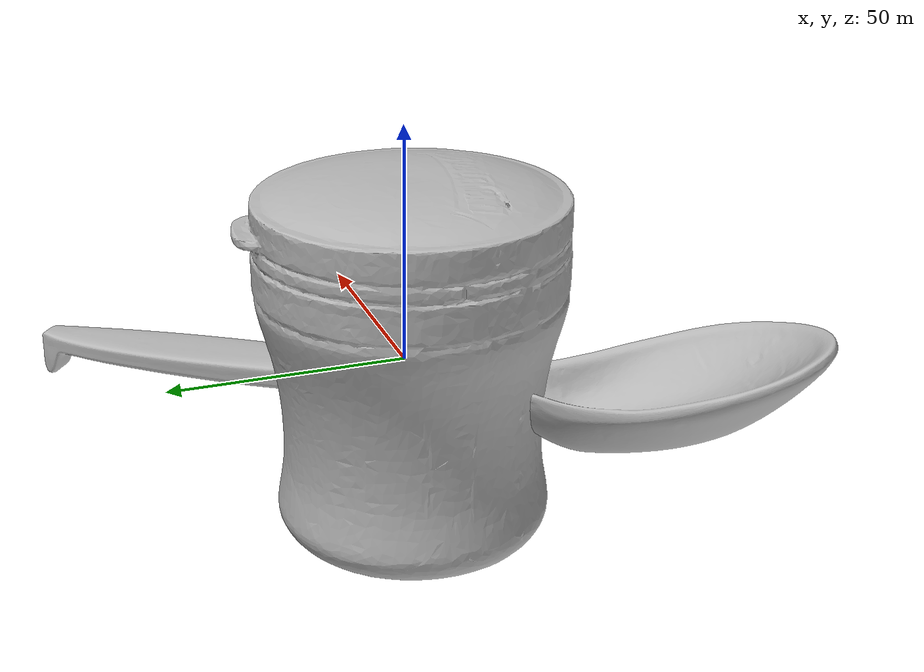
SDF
<sdf version="1.4">
 <world name="default">
  <light name="light1" type="point">
   <pose>0 0 1 0 0 0</pose>
   <diffuse>3 3 3 1</diffuse>
   <specular>3 3 3 1</specular>
  </light>
  <light name="light2" type="point">
   <pose>0 0.5 2 0 0 0</pose>
   <diffuse>1 1 1 1</diffuse>
   <specular>1 1 1 1</specular>
  </light>
  <light name="light3" type="point">
   <pose>0 0.5 2 0 0 0</pose>
   <diffuse>3 3 3 1</diffuse>
   <specular>3 3 3 1</specular>
  </light>
  <scene><ambient>0.7 0.7 0.7</ambient></scene>
  <model name="bottle1">
   <link name="link_bottle1">
    <collision name="default">
     <geometry>
      <mesh><uri>model://green_arrow/collision_meshes/collision.obj</uri><scale>1.0 1.0 1.0</scale></mesh>
     </geometry>
     <surface>
      <friction><ode><mu>0.5</mu><mu2>0.5</mu2></ode></friction>
      <contact><ode><max_vel>0</max_vel><min_depth>0.0001</min_depth><kp>1e8</kp></ode></contact>
     </surface>
    </collision>
    <visual name="default">
     <geometry>
      <mesh><uri>model://green_arrow/visual_meshes/visual.dae</uri><scale>1.0 1.0 1.0</scale></mesh>
     </geometry>
    </visual>
    <inertial>
     <mass>0.31872013211250305</mass>
     <pose>0.0005358478520065546 -0.0008270691032521427 0.002210969803854823 -0.06332250060756175 0.012985582117300467 0.6741007804522225</pose>
     <inertia>
      <ixx>0.00023120124</ixx>
      <iyy>0.000230851</iyy>
      <izz>0.0001492862</izz>
      <ixy>0</ixy>
      <ixz>0</ixz>
      <iyz>0</iyz>
     </inertia>
    </inertial>
   </link>
   <pose>0.07375995814800262 -0.36841335892677307 0.03903084248304367 0.038517992277975005 0.024628438937317372 -0.8557784127164831</pose>
  </model>
  <model name="bottle2">
   <link name="link_bottle2">
    <collision name="default">
     <geometry>
      <mesh><uri>model://pigeon/collision_meshes/collision.obj</uri><scale>1.0 1.0 1.0</scale></mesh>
     </geometry>
     <surface>
      <friction><ode><mu>0.5</mu><mu2>0.5</mu2></ode></friction>
      <contact><ode><max_vel>0</max_vel><min_depth>0.0001</min_depth><kp>1e8</kp></ode></contact>
     </surface>
    </collision>
    <visual name="default">
     <geometry><mesh><uri>model://pigeon/visual_meshes/visual.dae</uri><scale>1.0 1.0 1.0</scale></mesh></geometry>
    </visual>
    <inertial>
     <mass>0.5279804468154907</mass>
     <pose>-9.675472392700613e-05 -0.0001927677367348224 -0.01593620702624321 -0.011704407495178063 -0.0012978199512556723 -0.04198835484465517</pose>
     <inertia>
      <ixx>0.0013198232</ixx>
      <iyy>0.0014089285</iyy>
      <izz>0.000271492</izz>
      <ixy>0</ixy>
      <ixz>0</ixz>
      <iyz>0</iyz>
     </inertia>
    </inertial>
   </link>
   <pose>-0.06105979159474373 -0.108894482254982 0.09864477813243866 2.4438423736262294e-05 2.94289050072857e-06 -0.4093182813711039</pose>
  </model>
  <model name="silverware1">
   <link name="link_silverware1">
    <collision name="default">
     <geometry>
      <mesh><uri>model://doraemon_spoon/collision_meshes/collision.obj</uri><scale>1.0 1.0 1.0</scale></mesh>
     </geometry>
     <surface>
      <friction><ode><mu>0.5</mu><mu2>0.5</mu2></ode></friction>
      <contact><ode><max_vel>0</max_vel><min_depth>0.0001</min_depth><kp>1e8</kp></ode></contact>
     </surface>
    </collision>
    <visual name="default">
     <geometry>
      <mesh><uri>model://doraemon_spoon/visual_meshes/visual.dae</uri><scale>1.0 1.0 1.0</scale></mesh>
     </geometry>
    </visual>
    <inertial>
     <mass>0.014849366620182991</mass>
     <pose>-0.022165074944496155 -0.0006374582299031317 -0.0033325457479804754 -0.009146985479672626 0.07380416127774835 -0.014123827206003371</pose>
     <inertia>
      <ixx>1.1631438e-06</ixx>
      <iyy>3.3035012e-05</iyy>
      <izz>3.359665e-05</izz>
      <ixy>0</ixy>
      <ixz>0</ixz>
      <iyz>0</iyz>
     </inertia>
    </inertial>
   </link>
   <pose>0.0821722075343132 0.06806901842355728 0.014969302341341972 0.0022798215301295904 -0.004406079464836549 0.9496364848783169</pose>
  </model>
  <model name="stationery1">
   <link name="link_stationery1">
    <collision name="default">
     <geometry>
      <mesh><uri>model://correction_fuid/collision_meshes/collision.obj</uri><scale>1.0 1.0 1.0</scale></mesh>
     </geometry>
     <surface>
      <friction><ode><mu>0.5</mu><mu2>0.5</mu2></ode></friction>
      <contact><ode><max_vel>0</max_vel><min_depth>0.0001</min_depth><kp>1e8</kp></ode></contact>
     </surface>
    </collision>
    <visual name="default">
     <geometry>
      <mesh><uri>model://correction_fuid/visual_meshes/visual.dae</uri><scale>1.0 1.0 1.0</scale></mesh>
     </geometry>
    </visual>
    <inertial>
     <mass>0.03422689810395241</mass>
     <pose>-0.00012557733862195164 -0.0009722901741042733 -0.001618212671019137 -0.010846609605282003 0.019488228935667613 -0.015992456651572746</pose>
     <inertia>
      <ixx>3.3149332e-05</ixx>
      <iyy>2.0062398e-06</iyy>
      <izz>3.4012115e-05</izz>
      <ixy>0</ixy>
      <ixz>0</ixz>
      <iyz>0</iyz>
     </inertia>
    </inertial>
   </link>
   <pose>0.09831371158361435 0.2868926525115967 0.009632828645408154 -0.001727143295546773 -0.056168493810851296 0.7702076309297208</pose>
  </model>
  <model name="bowl1">
   <link name="link_bowl1">
    <collision name="default">
     <geometry>
      <mesh><uri>model://doraemon_bowl/collision_meshes/collision.obj</uri><scale>1.0 1.0 1.0</scale></mesh>
     </geometry>
     <surface>
      <friction><ode><mu>0.5</mu><mu2>0.5</mu2></ode></friction>
      <contact><ode><max_vel>0</max_vel><min_depth>0.0001</min_depth><kp>1e8</kp></ode></contact>
     </surface>
    </collision>
    <visual name="default">
     <geometry>
      <mesh><uri>model://doraemon_bowl/visual_meshes/visual.dae</uri><scale>1.0 1.0 1.0</scale></mesh>
     </geometry>
    </visual>
    <inertial>
     <mass>0.10659078508615494</mass>
     <pose>-0.014629560522735119 0.00048571196384727955 -0.002086488762870431 -0.00509398386316645 -0.10568401530986889 -0.026426397124795446</pose>
     <inertia>
      <ixx>0.00014780516</ixx>
      <iyy>0.00019451023</iyy>
      <izz>0.00028617028</izz>
      <ixy>0</ixy>
      <ixz>0</ixz>
      <iyz>0</iyz>
     </inertia>
    </inertial>
   </link>
   <pose>0.18078412115573883 0.18612557649612427 0.025909412652254105 0.008589225559187334 0.00592187782716145 -2.7464773055270753</pose>
  </model>
  <model name="cup1">
   <link name="link_cup1">
    <collision name="default">
     <geometry>
      <mesh><uri>model://doraemon_cup/collision_meshes/collision.obj</uri><scale>1.0 1.0 1.0</scale></mesh>
     </geometry>
     <surface>
      <friction><ode><mu>0.5</mu><mu2>0.5</mu2></ode></friction>
      <contact><ode><max_vel>0</max_vel><min_depth>0.0001</min_depth><kp>1e8</kp></ode></contact>
     </surface>
    </collision>
    <visual name="default">
     <geometry>
      <mesh><uri>model://doraemon_cup/visual_meshes/visual.dae</uri><scale>1.0 1.0 1.0</scale></mesh>
     </geometry>
    </visual>
    <inertial>
     <mass>0.07019124925136566</mass>
     <pose>-0.0003292977053206414 -0.0016633619088679552 -0.0022522560320794582 0.19498543632694942 -0.013693723781048914 -0.3205469926711019</pose>
     <inertia>
      <ixx>9.599299e-05</ixx>
      <iyy>9.2830705e-05</iyy>
      <izz>7.5864096e-05</izz>
      <ixy>0</ixy>
      <ixz>0</ixz>
      <iyz>0</iyz>
     </inertia>
    </inertial>
   </link>
   <pose>0.11314276605844498 0.04784180596470833 0.04622891545295715 -0.01555103914747826 -0.002221935676144226 1.1023630350802316</pose>
  </model>
  <model name="plate1">
   <link name="link_plate1">
    <collision name="default">
     <geometry>
      <mesh><uri>model://hello_kitty_plate/collision_meshes/collision.obj</uri><scale>1.0 1.0 1.0</scale></mesh>
     </geometry>
     <surface>
      <friction><ode><mu>0.5</mu><mu2>0.5</mu2></ode></friction>
      <contact><ode><max_vel>0</max_vel><min_depth>0.0001</min_depth><kp>1e8</kp></ode></contact>
     </surface>
    </collision>
    <visual name="default">
     <geometry>
      <mesh><uri>model://hello_kitty_plate/visual_meshes/visual.dae</uri><scale>1.0 1.0 1.0</scale></mesh>
     </geometry>
    </visual>
    <inertial>
     <mass>0.03849242627620697</mass>
     <pose>0.007314295973628759 0.00028937432216480374 -0.0027947183698415756 -0.00010431794154861864 -0.007054443662422379 -0.014449020506613262</pose>
     <inertia>
      <ixx>7.4224925e-05</ixx>
      <iyy>0.00014008483</iyy>
      <izz>0.00021270475</izz>
      <ixy>0</ixy>
      <ixz>0</ixz>
      <iyz>0</iyz>
     </inertia>
    </inertial>
   </link>
   <pose>0.0008037062361836433 0.04846716672182083 0.05801703780889511 -0.19048773271058575 0.5923709925510872 2.4483048198055424</pose>
  </model>
  <model name="box4">
   <link name="link_box4">
    <collision name="default">
     <geometry>
      <mesh><uri>model://wooden_puzzle2/collision_meshes/collision.obj</uri><scale>1.0 1.0 1.0</scale></mesh>
     </geometry>
     <surface>
      <friction><ode><mu>0.5</mu><mu2>0.5</mu2></ode></friction>
      <contact><ode><max_vel>0</max_vel><min_depth>0.0001</min_depth><kp>1e8</kp></ode></contact>
     </surface>
    </collision>
    <visual name="default">
     <geometry>
      <mesh><uri>model://wooden_puzzle2/visual_meshes/visual.dae</uri><scale>1.0 1.0 1.0</scale></mesh>
     </geometry>
    </visual>
    <inertial>
     <mass>0.023858843371272087</mass>
     <pose>2.7402536943554878e-05 4.997663199901581e-05 6.587122334167361e-05 -0.1920347142936951 0.6112821219690274 -0.6338705729322873</pose>
     <inertia>
      <ixx>4.4351036e-06</ixx>
      <iyy>4.557319e-06</iyy>
      <izz>4.4924864e-06</izz>
      <ixy>0</ixy>
      <ixz>0</ixz>
      <iyz>0</iyz>
     </inertia>
    </inertial>
   </link>
   <pose>0.11678742617368698 -0.2076478898525238 0.01691773347556591 0.020848338110975063 0.0007213202429144488 2.246048907591918</pose>
  </model>
  <physics type="ode">
   <max_contacts>50</max_contacts>
   <ode>
    <solver><type>quick</type><iters>75</iters></solver>
    <constraints>
     <contact_max_correcting_vel>0</contact_max_correcting_vel>
     <contact_surface_layer>0</contact_surface_layer>
    </constraints>
   </ode>
  </physics>
 </world>
</sdf>
